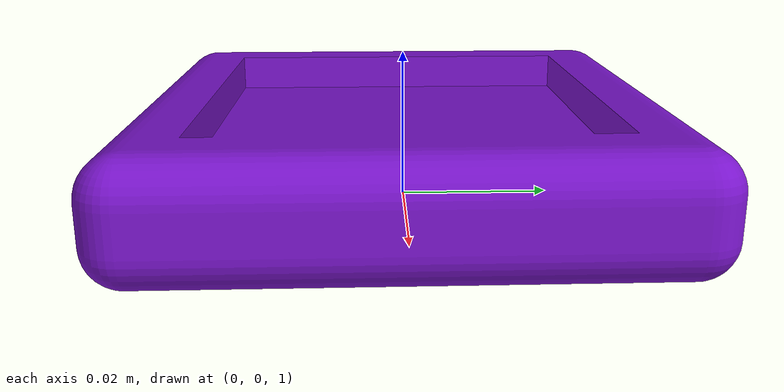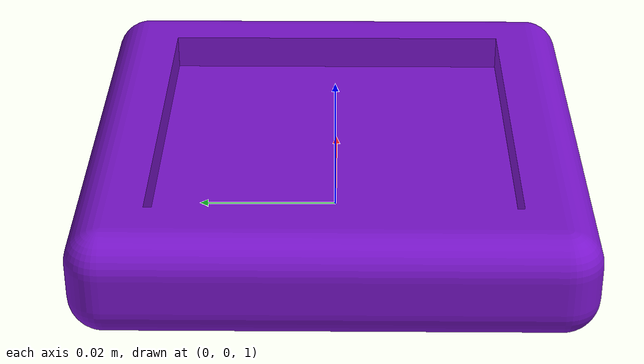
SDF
<?xml version="1.0" ?>
<sdf version="1.6">
  <model name="container_m">
    <pose>0 0 1 0 0 0</pose>
    <static>false</static>

    <link name="link_container_m">
      <inertial>
        <mass>0.059</mass>
        <pose>0 0 0.006419 0 0 0</pose>
        <inertia>
          <ixx>2.6257e-5</ixx>
          <iyy>2.6257e-5</iyy>
          <izz>5.0783e-5</izz>
          <ixy>0.0</ixy>
          <ixz>0.0</ixz>
          <iyz>0.0</iyz>
        </inertia>
      </inertial>

      <!-- 注意尺寸单位已改为米 -->
      <collision name="collision">
        <geometry>
          <mesh>
            <uri>model://container_m/meshes/container_m.dae</uri>
          </mesh>
        </geometry>
      </collision>

      <visual name="visual">
        <geometry>
          <mesh>
            <uri>model://container_m/meshes/container_m.dae</uri>
          </mesh>
        </geometry>
      </visual>
    </link>
  </model>
</sdf>
